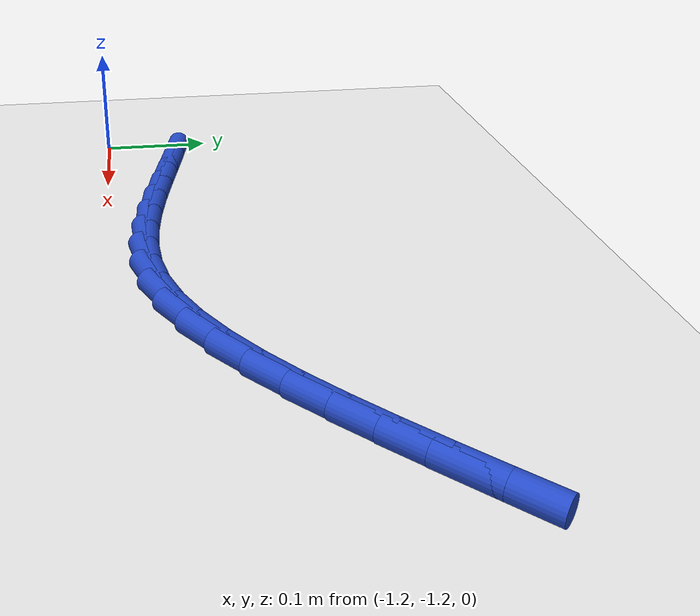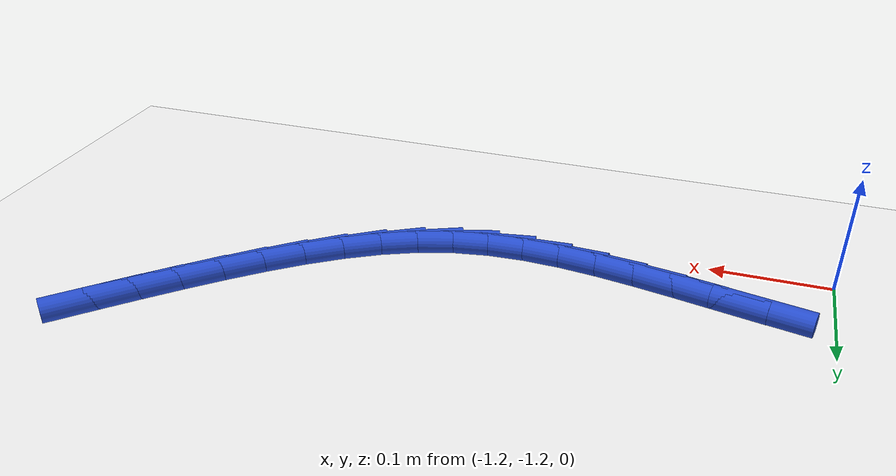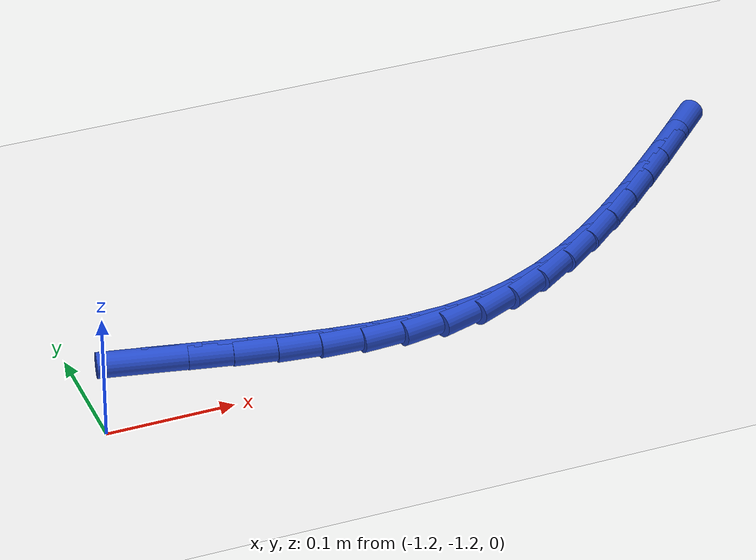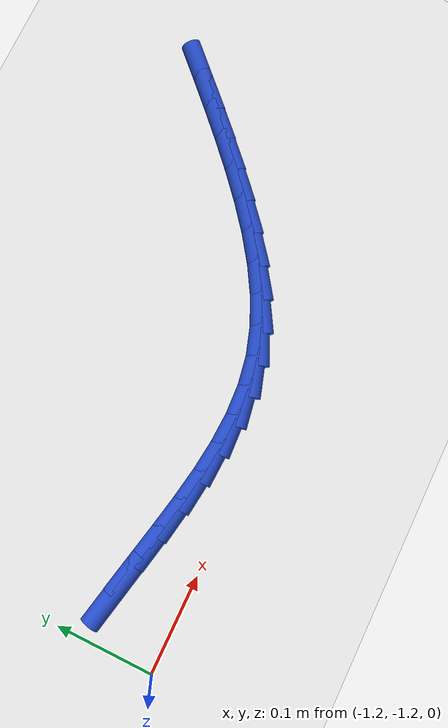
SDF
<sdf version="1.6">
 <world name="default">
  <model name="ground_plane">
   <static>1</static>
   <link name="link">
    <collision name="collision">
     <geometry><plane><normal>0 0 1</normal><size>100 100</size></plane></geometry>
     <surface><friction><ode><mu>100</mu><mu2>50</mu2></ode></friction></surface>
    </collision>
    <visual name="visual">
     <cast_shadows>0</cast_shadows>
     <geometry><plane><normal>0 0 1</normal><size>100 100</size></plane></geometry>
     <material>
      <script><uri>file://media/materials/scripts/gazebo.material</uri><name>Gazebo/WhiteGlow</name></script>
     </material>
    </visual>
   </link>
  </model>
  <model name="line">
   <link name="link_166">
    <pose>-1.144438263881508 -1.13507442181232 0.01 0 1.57 -0.20573191799951596</pose>
    <collision name="collision">
     <geometry><cylinder><radius>0.01</radius><length>0.08</length></cylinder></geometry>
    </collision>
    <visual name="visual">
     <material>
      <script><name>Gazebo/Blue</name><uri>file://media/materials/scripts/gazebo.material</uri></script>
     </material>
     <geometry><cylinder><radius>0.01</radius><length>0.08</length></cylinder></geometry>
    </visual>
   </link>
   <link name="link_167">
    <pose>-1.1106379198927314 -1.1421280294629172 0.01 0 1.57 -0.2117166641722018</pose>
    <collision name="collision">
     <geometry><cylinder><radius>0.01</radius><length>0.08</length></cylinder></geometry>
    </collision>
    <visual name="visual">
     <material>
      <script><name>Gazebo/Blue</name><uri>file://media/materials/scripts/gazebo.material</uri></script>
     </material>
     <geometry><cylinder><radius>0.01</radius><length>0.08</length></cylinder></geometry>
    </visual>
   </link>
   <link name="link_168">
    <pose>-1.0771389750663272 -1.1493282174504917 0.01 0 1.57 -0.19966652123212222</pose>
    <collision name="collision">
     <geometry><cylinder><radius>0.01</radius><length>0.08</length></cylinder></geometry>
    </collision>
    <visual name="visual">
     <material>
      <script><name>Gazebo/Blue</name><uri>file://media/materials/scripts/gazebo.material</uri></script>
     </material>
     <geometry><cylinder><radius>0.01</radius><length>0.08</length></cylinder></geometry>
    </visual>
   </link>
   <link name="link_169">
    <pose>-1.0439949418123935 -1.1560353393784577 0.01 0 1.57 -0.16866791813950852</pose>
    <collision name="collision">
     <geometry><cylinder><radius>0.01</radius><length>0.08</length></cylinder></geometry>
    </collision>
    <visual name="visual">
     <material>
      <script><name>Gazebo/Blue</name><uri>file://media/materials/scripts/gazebo.material</uri></script>
     </material>
     <geometry><cylinder><radius>0.01</radius><length>0.08</length></cylinder></geometry>
    </visual>
   </link>
   <link name="link_170">
    <pose>-1.011259332541031 -1.16160974885023 0.01 0 1.57 -0.11726607263121713</pose>
    <collision name="collision">
     <geometry><cylinder><radius>0.01</radius><length>0.08</length></cylinder></geometry>
    </collision>
    <visual name="visual">
     <material>
      <script><name>Gazebo/Blue</name><uri>file://media/materials/scripts/gazebo.material</uri></script>
     </material>
     <geometry><cylinder><radius>0.01</radius><length>0.08</length></cylinder></geometry>
    </visual>
   </link>
   <link name="link_171">
    <pose>-0.978985659662337 -1.1654117994692217 0.01 0 1.57 -0.04374170015818377</pose>
    <collision name="collision">
     <geometry><cylinder><radius>0.01</radius><length>0.08</length></cylinder></geometry>
    </collision>
    <visual name="visual">
     <material>
      <script><name>Gazebo/Blue</name><uri>file://media/materials/scripts/gazebo.material</uri></script>
     </material>
     <geometry><cylinder><radius>0.01</radius><length>0.08</length></cylinder></geometry>
    </visual>
   </link>
   <link name="link_172">
    <pose>-0.9472274355864104 -1.166801844838848 0.01 0 1.57 0.05322462906314602</pose>
    <collision name="collision">
     <geometry><cylinder><radius>0.01</radius><length>0.08</length></cylinder></geometry>
    </collision>
    <visual name="visual">
     <material>
      <script><name>Gazebo/Blue</name><uri>file://media/materials/scripts/gazebo.material</uri></script>
     </material>
     <geometry><cylinder><radius>0.01</radius><length>0.08</length></cylinder></geometry>
    </visual>
   </link>
   <link name="link_173">
    <pose>-0.916038172723349 -1.1651402385625222 0.01 0 1.57 0.17336362782893155</pose>
    <collision name="collision">
     <geometry><cylinder><radius>0.01</radius><length>0.08</length></cylinder></geometry>
    </collision>
    <visual name="visual">
     <material>
      <script><name>Gazebo/Blue</name><uri>file://media/materials/scripts/gazebo.material</uri></script>
     </material>
     <geometry><cylinder><radius>0.01</radius><length>0.08</length></cylinder></geometry>
    </visual>
   </link>
   <link name="link_174">
    <pose>-0.885471383483253 -1.1597873342436589 0.01 0 1.57 0.3094507802173202</pose>
    <collision name="collision">
     <geometry><cylinder><radius>0.01</radius><length>0.08</length></cylinder></geometry>
    </collision>
    <visual name="visual">
     <material>
      <script><name>Gazebo/Blue</name><uri>file://media/materials/scripts/gazebo.material</uri></script>
     </material>
     <geometry><cylinder><radius>0.01</radius><length>0.08</length></cylinder></geometry>
    </visual>
   </link>
   <link name="link_175">
    <pose>-0.8555770844333668 -1.150229468072536 0.01 0 1.57 0.4320220303635946</pose>
    <collision name="collision">
     <geometry><cylinder><radius>0.01</radius><length>0.08</length></cylinder></geometry>
    </collision>
    <visual name="visual">
     <material>
      <script><name>Gazebo/Blue</name><uri>file://media/materials/scripts/gazebo.material</uri></script>
     </material>
     <geometry><cylinder><radius>0.01</radius><length>0.08</length></cylinder></geometry>
    </visual>
   </link>
   <link name="link_176">
    <pose>-0.8263826548773425 -1.1367687740731771 0.01 0 1.57 0.5313518742376985</pose>
    <collision name="collision">
     <geometry><cylinder><radius>0.01</radius><length>0.08</length></cylinder></geometry>
    </collision>
    <visual name="visual">
     <material>
      <script><name>Gazebo/Blue</name><uri>file://media/materials/scripts/gazebo.material</uri></script>
     </material>
     <geometry><cylinder><radius>0.01</radius><length>0.08</length></cylinder></geometry>
    </visual>
   </link>
   <link name="link_177">
    <pose>-0.7979064573097877 -1.120032332491838 0.01 0 1.57 0.6099157861896407</pose>
    <collision name="collision">
     <geometry><cylinder><radius>0.01</radius><length>0.08</length></cylinder></geometry>
    </collision>
    <visual name="visual">
     <material>
      <script><name>Gazebo/Blue</name><uri>file://media/materials/scripts/gazebo.material</uri></script>
     </material>
     <geometry><cylinder><radius>0.01</radius><length>0.08</length></cylinder></geometry>
    </visual>
   </link>
   <link name="link_178">
    <pose>-0.7701668309766431 -1.1006480614061722 0.01 0 1.57 0.6705786847598324</pose>
    <collision name="collision">
     <geometry><cylinder><radius>0.01</radius><length>0.08</length></cylinder></geometry>
    </collision>
    <visual name="visual">
     <material>
      <script><name>Gazebo/Blue</name><uri>file://media/materials/scripts/gazebo.material</uri></script>
     </material>
     <geometry><cylinder><radius>0.01</radius><length>0.08</length></cylinder></geometry>
    </visual>
   </link>
   <link name="link_179">
    <pose>-0.7431821151238536 -1.0792438788938357 0.01 0 1.57 0.7158217189455871</pose>
    <collision name="collision">
     <geometry><cylinder><radius>0.01</radius><length>0.08</length></cylinder></geometry>
    </collision>
    <visual name="visual">
     <material>
      <script><name>Gazebo/Blue</name><uri>file://media/materials/scripts/gazebo.material</uri></script>
     </material>
     <geometry><cylinder><radius>0.01</radius><length>0.08</length></cylinder></geometry>
    </visual>
   </link>
   <link name="link_180">
    <pose>-0.7169706489973603 -1.056447703032482 0.01 0 1.57 0.7474494418452156</pose>
    <collision name="collision">
     <geometry><cylinder><radius>0.01</radius><length>0.08</length></cylinder></geometry>
    </collision>
    <visual name="visual">
     <material>
      <script><name>Gazebo/Blue</name><uri>file://media/materials/scripts/gazebo.material</uri></script>
     </material>
     <geometry><cylinder><radius>0.01</radius><length>0.08</length></cylinder></geometry>
    </visual>
   </link>
   <link name="link_181">
    <pose>-0.6915507718431061 -1.0328874518997655 0.01 0 1.57 0.7675157044688105</pose>
    <collision name="collision">
     <geometry><cylinder><radius>0.01</radius><length>0.08</length></cylinder></geometry>
    </collision>
    <visual name="visual">
     <material>
      <script><name>Gazebo/Blue</name><uri>file://media/materials/scripts/gazebo.material</uri></script>
     </material>
     <geometry><cylinder><radius>0.01</radius><length>0.08</length></cylinder></geometry>
    </visual>
   </link>
   <link name="link_182">
    <pose>-0.6669134931767017 -1.0091159338395603 0.01 0 1.57 0.7811978868021642</pose>
    <collision name="collision">
     <geometry><cylinder><radius>0.01</radius><length>0.08</length></cylinder></geometry>
    </collision>
    <visual name="visual">
     <material>
      <script><name>Gazebo/Blue</name><uri>file://media/materials/scripts/gazebo.material</uri></script>
     </material>
     <geometry><cylinder><radius>0.01</radius><length>0.08</length></cylinder></geometry>
    </visual>
   </link>
   <link name="link_183">
    <pose>-0.6429165779834719 -0.9853197640033358 0.01 0 1.57 0.7897611789242327</pose>
    <collision name="collision">
     <geometry><cylinder><radius>0.01</radius><length>0.08</length></cylinder></geometry>
    </collision>
    <visual name="visual">
     <material>
      <script><name>Gazebo/Blue</name><uri>file://media/materials/scripts/gazebo.material</uri></script>
     </material>
     <geometry><cylinder><radius>0.01</radius><length>0.08</length></cylinder></geometry>
    </visual>
   </link>
  </model>
 </world>
</sdf>
